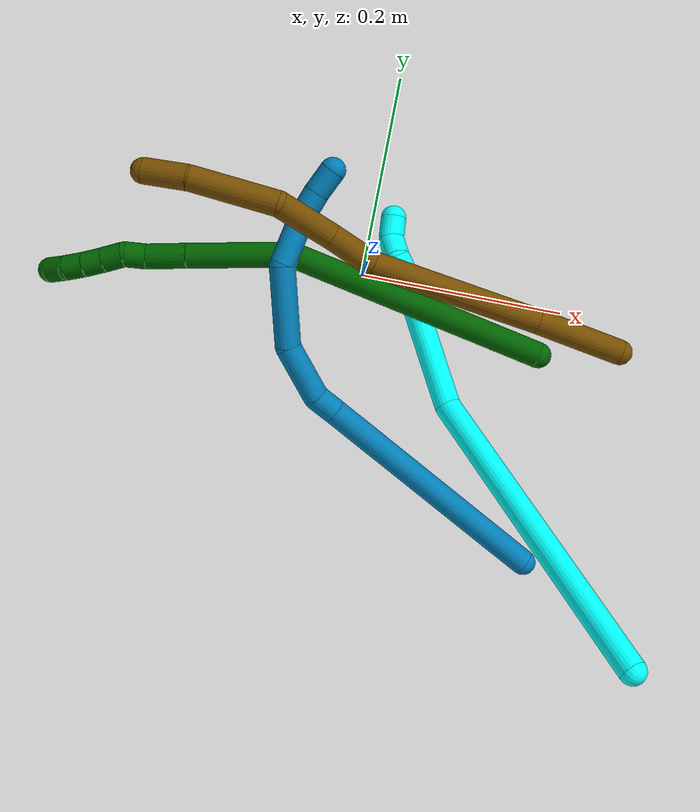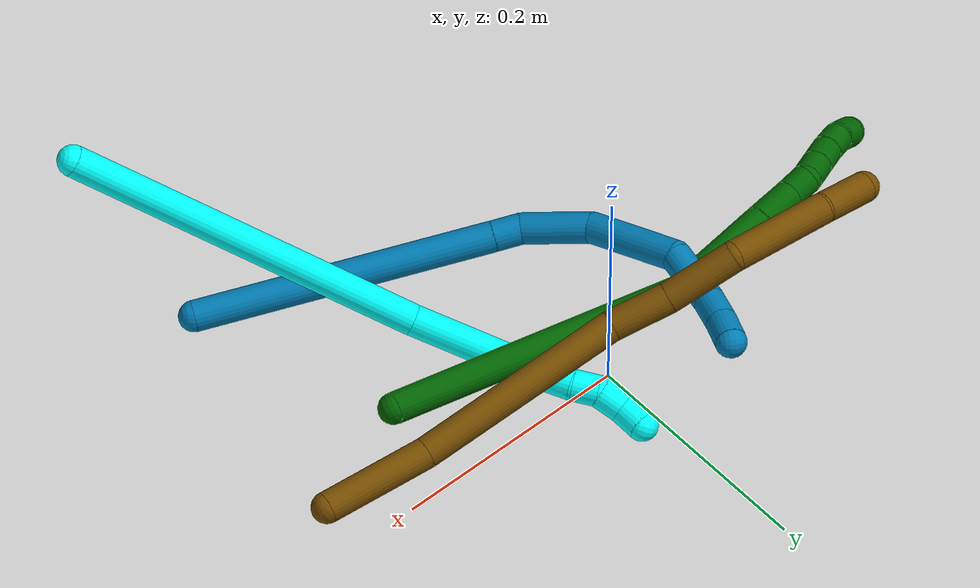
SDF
<sdf version="1.7">
 <world name="default">
  <model name="3">
   <static>0</static>
   <link name="3">
    <collision name="collision-cylinder-e_1_1_4">
     <pose>-0.002472 0.033689 -0.147242 -2.91666 -0.016366 0.144658</pose>
     <geometry><cylinder><radius>0.0125</radius><length>0.302135</length></cylinder></geometry>
     <surface>
      <friction><ode><mu>1.16</mu><mu2>1.16</mu2><slip1>0</slip1><slip2>0</slip2></ode></friction>
      <contact><ode><kp>1e+06</kp><kd>1</kd><max_vel>0</max_vel><min_depth>0.001</min_depth></ode></contact>
     </surface>
    </collision>
    <visual name="visual-cylinder-e_1_1_4">
     <pose>-0.002472 0.033689 -0.147242 -2.91666 -0.016366 0.144658</pose>
     <geometry><cylinder><radius>0.0125</radius><length>0.302135</length></cylinder></geometry>
     <material><ambient>0.003922 1 0.996078 1</ambient></material>
    </visual>
    <collision name="collision-cylinder-e_2_4_5">
     <pose>-0.0301 0.084288 -0.342342 -2.80196 -0.460121 1.87766</pose>
     <geometry><cylinder><radius>0.0125</radius><length>0.113297</length></cylinder></geometry>
     <surface>
      <friction><ode><mu>1.16</mu><mu2>1.16</mu2><slip1>0</slip1><slip2>0</slip2></ode></friction>
      <contact><ode><kp>1e+06</kp><kd>1</kd><max_vel>0</max_vel><min_depth>0.001</min_depth></ode></contact>
     </surface>
    </collision>
    <visual name="visual-cylinder-e_2_4_5">
     <pose>-0.0301 0.084288 -0.342342 -2.80196 -0.460121 1.87766</pose>
     <geometry><cylinder><radius>0.0125</radius><length>0.113297</length></cylinder></geometry>
     <material><ambient>0.003922 1 0.996078 1</ambient></material>
    </visual>
    <collision name="collision-cylinder-e_3_5_6">
     <pose>-0.061038 0.103978 -0.398027 -2.80028 -0.608153 2.13718</pose>
     <geometry><cylinder><radius>0.0125</radius><length>0.020243</length></cylinder></geometry>
     <surface>
      <friction><ode><mu>1.16</mu><mu2>1.16</mu2><slip1>0</slip1><slip2>0</slip2></ode></friction>
      <contact><ode><kp>1e+06</kp><kd>1</kd><max_vel>0</max_vel><min_depth>0.001</min_depth></ode></contact>
     </surface>
    </collision>
    <visual name="visual-cylinder-e_3_5_6">
     <pose>-0.061038 0.103978 -0.398027 -2.80028 -0.608153 2.13718</pose>
     <geometry><cylinder><radius>0.0125</radius><length>0.020243</length></cylinder></geometry>
     <material><ambient>0.003922 1 0.996078 1</ambient></material>
    </visual>
    <collision name="collision-cylinder-e_4_6_7">
     <pose>-0.071733 0.108203 -0.414715 -2.97997 -0.500651 2.52809</pose>
     <geometry><cylinder><radius>0.0125</radius><length>0.020466</length></cylinder></geometry>
     <surface>
      <friction><ode><mu>1.16</mu><mu2>1.16</mu2><slip1>0</slip1><slip2>0</slip2></ode></friction>
      <contact><ode><kp>1e+06</kp><kd>1</kd><max_vel>0</max_vel><min_depth>0.001</min_depth></ode></contact>
     </surface>
    </collision>
    <visual name="visual-cylinder-e_4_6_7">
     <pose>-0.071733 0.108203 -0.414715 -2.97997 -0.500651 2.52809</pose>
     <geometry><cylinder><radius>0.0125</radius><length>0.020466</length></cylinder></geometry>
     <material><ambient>0.003922 1 0.996078 1</ambient></material>
    </visual>
    <collision name="collision-cylinder-e_5_7_8">
     <pose>-0.078556 0.114528 -0.433543 -2.6863 -0.170548 0.706982</pose>
     <geometry><cylinder><radius>0.0125</radius><length>0.022523</length></cylinder></geometry>
     <surface>
      <friction><ode><mu>1.16</mu><mu2>1.16</mu2><slip1>0</slip1><slip2>0</slip2></ode></friction>
      <contact><ode><kp>1e+06</kp><kd>1</kd><max_vel>0</max_vel><min_depth>0.001</min_depth></ode></contact>
     </surface>
    </collision>
    <visual name="visual-cylinder-e_5_7_8">
     <pose>-0.078556 0.114528 -0.433543 -2.6863 -0.170548 0.706982</pose>
     <geometry><cylinder><radius>0.0125</radius><length>0.022523</length></cylinder></geometry>
     <material><ambient>0.003922 1 0.996078 1</ambient></material>
    </visual>
    <collision name="collision-cylinder-e_6_8_2">
     <pose>-0.085907 0.126007 -0.449888 -2.3391 -0.535087 1.14725</pose>
     <geometry><cylinder><radius>0.0125</radius><length>0.021335</length></cylinder></geometry>
     <surface>
      <friction><ode><mu>1.16</mu><mu2>1.16</mu2><slip1>0</slip1><slip2>0</slip2></ode></friction>
      <contact><ode><kp>1e+06</kp><kd>1</kd><max_vel>0</max_vel><min_depth>0.001</min_depth></ode></contact>
     </surface>
    </collision>
    <visual name="visual-cylinder-e_6_8_2">
     <pose>-0.085907 0.126007 -0.449888 -2.3391 -0.535087 1.14725</pose>
     <geometry><cylinder><radius>0.0125</radius><length>0.021335</length></cylinder></geometry>
     <material><ambient>0.003922 1 0.996078 1</ambient></material>
    </visual>
    <collision name="collision-sphere-2">
     <pose>-0.091346 0.132606 -0.456265 0 -0 0</pose>
     <geometry><sphere><radius>0.0125</radius></sphere></geometry>
     <surface>
      <friction><ode><mu>1.16</mu><mu2>1.16</mu2><slip1>0</slip1><slip2>0</slip2></ode></friction>
      <contact><ode><kp>1e+06</kp><kd>1</kd><max_vel>0</max_vel><min_depth>0.001</min_depth></ode></contact>
     </surface>
    </collision>
    <visual name="visual-sphere-2">
     <pose>-0.091346 0.132606 -0.456265 0 -0 0</pose>
     <geometry><sphere><radius>0.0125</radius></sphere></geometry>
     <material><ambient>0.003922 1 0.996078 1</ambient></material>
    </visual>
    <collision name="collision-sphere-4">
     <pose>-0.004945 0.067378 -0.294485 0 -0 0</pose>
     <geometry><sphere><radius>0.0125</radius></sphere></geometry>
     <surface>
      <friction><ode><mu>1.16</mu><mu2>1.16</mu2><slip1>0</slip1><slip2>0</slip2></ode></friction>
      <contact><ode><kp>1e+06</kp><kd>1</kd><max_vel>0</max_vel><min_depth>0.001</min_depth></ode></contact>
     </surface>
    </collision>
    <visual name="visual-sphere-4">
     <pose>-0.004945 0.067378 -0.294485 0 -0 0</pose>
     <geometry><sphere><radius>0.0125</radius></sphere></geometry>
     <material><ambient>0.003922 1 0.996078 1</ambient></material>
    </visual>
    <collision name="collision-sphere-1">
     <geometry><sphere><radius>0.0125</radius></sphere></geometry>
     <surface>
      <friction><ode><mu>1.16</mu><mu2>1.16</mu2><slip1>0</slip1><slip2>0</slip2></ode></friction>
      <contact><ode><kp>1e+06</kp><kd>1</kd><max_vel>0</max_vel><min_depth>0.001</min_depth></ode></contact>
     </surface>
    </collision>
    <visual name="visual-sphere-1">
     <geometry><sphere><radius>0.0125</radius></sphere></geometry>
     <material><ambient>0.003922 1 0.996078 1</ambient></material>
    </visual>
    <collision name="collision-sphere-8">
     <pose>-0.080467 0.119408 -0.443511 0 -0 0</pose>
     <geometry><sphere><radius>0.0125</radius></sphere></geometry>
     <surface>
      <friction><ode><mu>1.16</mu><mu2>1.16</mu2><slip1>0</slip1><slip2>0</slip2></ode></friction>
      <contact><ode><kp>1e+06</kp><kd>1</kd><max_vel>0</max_vel><min_depth>0.001</min_depth></ode></contact>
     </surface>
    </collision>
    <visual name="visual-sphere-8">
     <pose>-0.080467 0.119408 -0.443511 0 -0 0</pose>
     <geometry><sphere><radius>0.0125</radius></sphere></geometry>
     <material><ambient>0.003922 1 0.996078 1</ambient></material>
    </visual>
    <collision name="collision-sphere-5">
     <pose>-0.055255 0.101197 -0.3902 0 -0 0</pose>
     <geometry><sphere><radius>0.0125</radius></sphere></geometry>
     <surface>
      <friction><ode><mu>1.16</mu><mu2>1.16</mu2><slip1>0</slip1><slip2>0</slip2></ode></friction>
      <contact><ode><kp>1e+06</kp><kd>1</kd><max_vel>0</max_vel><min_depth>0.001</min_depth></ode></contact>
     </surface>
    </collision>
    <visual name="visual-sphere-5">
     <pose>-0.055255 0.101197 -0.3902 0 -0 0</pose>
     <geometry><sphere><radius>0.0125</radius></sphere></geometry>
     <material><ambient>0.003922 1 0.996078 1</ambient></material>
    </visual>
    <collision name="collision-sphere-6">
     <pose>-0.066821 0.106758 -0.405855 0 -0 0</pose>
     <geometry><sphere><radius>0.0125</radius></sphere></geometry>
     <surface>
      <friction><ode><mu>1.16</mu><mu2>1.16</mu2><slip1>0</slip1><slip2>0</slip2></ode></friction>
      <contact><ode><kp>1e+06</kp><kd>1</kd><max_vel>0</max_vel><min_depth>0.001</min_depth></ode></contact>
     </surface>
    </collision>
    <visual name="visual-sphere-6">
     <pose>-0.066821 0.106758 -0.405855 0 -0 0</pose>
     <geometry><sphere><radius>0.0125</radius></sphere></geometry>
     <material><ambient>0.003922 1 0.996078 1</ambient></material>
    </visual>
    <collision name="collision-sphere-7">
     <pose>-0.076644 0.109647 -0.423575 0 -0 0</pose>
     <geometry><sphere><radius>0.0125</radius></sphere></geometry>
     <surface>
      <friction><ode><mu>1.16</mu><mu2>1.16</mu2><slip1>0</slip1><slip2>0</slip2></ode></friction>
      <contact><ode><kp>1e+06</kp><kd>1</kd><max_vel>0</max_vel><min_depth>0.001</min_depth></ode></contact>
     </surface>
    </collision>
    <visual name="visual-sphere-7">
     <pose>-0.076644 0.109647 -0.423575 0 -0 0</pose>
     <geometry><sphere><radius>0.0125</radius></sphere></geometry>
     <material><ambient>0.003922 1 0.996078 1</ambient></material>
    </visual>
    <inertial>
     <pose>-0.020926 0.058631 -0.238363 0 -0 0</pose>
     <mass>0.5</mass>
     <inertia>
      <ixx>0.002689</ixx>
      <ixy>0</ixy>
      <ixz>0</ixz>
      <iyy>-0.001718</iyy>
      <iyz>0</iyz>
      <izz>-0.000494</izz>
     </inertia>
    </inertial>
   </link>
   <pose>0.28109 -0.294336 0.21033 -0.784713 0.86983 -1.48014</pose>
  </model>
  <model name="6">
   <static>0</static>
   <link name="6">
    <collision name="collision-cylinder-e_1_1_4">
     <pose>-0.063825 -0.021526 0.1074 0.197812 -0.527591 -0.053589</pose>
     <geometry><cylinder><radius>0.0125</radius><length>0.253548</length></cylinder></geometry>
     <surface>
      <friction><ode><mu>1.16</mu><mu2>1.16</mu2><slip1>0</slip1><slip2>0</slip2></ode></friction>
      <contact><ode><kp>1e+06</kp><kd>1</kd><max_vel>0</max_vel><min_depth>0.001</min_depth></ode></contact>
     </surface>
    </collision>
    <visual name="visual-cylinder-e_1_1_4">
     <pose>-0.063825 -0.021526 0.1074 0.197812 -0.527591 -0.053589</pose>
     <geometry><cylinder><radius>0.0125</radius><length>0.253548</length></cylinder></geometry>
     <material><ambient>0 0.392157 0.003922 1</ambient></material>
    </visual>
    <collision name="collision-cylinder-e_2_4_5">
     <pose>-0.155758 -0.06929 0.248363 0.663483 -0.583242 -0.206074</pose>
     <geometry><cylinder><radius>0.0125</radius><length>0.102078</length></cylinder></geometry>
     <surface>
      <friction><ode><mu>1.16</mu><mu2>1.16</mu2><slip1>0</slip1><slip2>0</slip2></ode></friction>
      <contact><ode><kp>1e+06</kp><kd>1</kd><max_vel>0</max_vel><min_depth>0.001</min_depth></ode></contact>
     </surface>
    </collision>
    <visual name="visual-cylinder-e_2_4_5">
     <pose>-0.155758 -0.06929 0.248363 0.663483 -0.583242 -0.206074</pose>
     <geometry><cylinder><radius>0.0125</radius><length>0.102078</length></cylinder></geometry>
     <material><ambient>0 0.392157 0.003922 1</ambient></material>
    </visual>
    <collision name="collision-cylinder-e_3_5_6">
     <pose>-0.195695 -0.106097 0.295074 0.677164 -0.611453 -0.221379</pose>
     <geometry><cylinder><radius>0.0125</radius><length>0.041207</length></cylinder></geometry>
     <surface>
      <friction><ode><mu>1.16</mu><mu2>1.16</mu2><slip1>0</slip1><slip2>0</slip2></ode></friction>
      <contact><ode><kp>1e+06</kp><kd>1</kd><max_vel>0</max_vel><min_depth>0.001</min_depth></ode></contact>
     </surface>
    </collision>
    <visual name="visual-cylinder-e_3_5_6">
     <pose>-0.195695 -0.106097 0.295074 0.677164 -0.611453 -0.221379</pose>
     <geometry><cylinder><radius>0.0125</radius><length>0.041207</length></cylinder></geometry>
     <material><ambient>0 0.392157 0.003922 1</ambient></material>
    </visual>
    <collision name="collision-cylinder-e_4_6_7">
     <pose>-0.211446 -0.121605 0.316814 0.521537 -0.377018 -0.101726</pose>
     <geometry><cylinder><radius>0.0125</radius><length>0.021314</length></cylinder></geometry>
     <surface>
      <friction><ode><mu>1.16</mu><mu2>1.16</mu2><slip1>0</slip1><slip2>0</slip2></ode></friction>
      <contact><ode><kp>1e+06</kp><kd>1</kd><max_vel>0</max_vel><min_depth>0.001</min_depth></ode></contact>
     </surface>
    </collision>
    <visual name="visual-cylinder-e_4_6_7">
     <pose>-0.211446 -0.121605 0.316814 0.521537 -0.377018 -0.101726</pose>
     <geometry><cylinder><radius>0.0125</radius><length>0.021314</length></cylinder></geometry>
     <material><ambient>0 0.392157 0.003922 1</ambient></material>
    </visual>
    <collision name="collision-cylinder-e_5_7_8">
     <pose>-0.221599 -0.133616 0.330237 0.971547 -0.62871 -0.340011</pose>
     <geometry><cylinder><radius>0.0125</radius><length>0.021185</length></cylinder></geometry>
     <surface>
      <friction><ode><mu>1.16</mu><mu2>1.16</mu2><slip1>0</slip1><slip2>0</slip2></ode></friction>
      <contact><ode><kp>1e+06</kp><kd>1</kd><max_vel>0</max_vel><min_depth>0.001</min_depth></ode></contact>
     </surface>
    </collision>
    <visual name="visual-cylinder-e_5_7_8">
     <pose>-0.221599 -0.133616 0.330237 0.971547 -0.62871 -0.340011</pose>
     <geometry><cylinder><radius>0.0125</radius><length>0.021185</length></cylinder></geometry>
     <material><ambient>0 0.392157 0.003922 1</ambient></material>
    </visual>
    <collision name="collision-cylinder-e_6_8_9">
     <pose>-0.233588 -0.147519 0.340153 0.930857 -0.594745 -0.305428</pose>
     <geometry><cylinder><radius>0.0125</radius><length>0.020558</length></cylinder></geometry>
     <surface>
      <friction><ode><mu>1.16</mu><mu2>1.16</mu2><slip1>0</slip1><slip2>0</slip2></ode></friction>
      <contact><ode><kp>1e+06</kp><kd>1</kd><max_vel>0</max_vel><min_depth>0.001</min_depth></ode></contact>
     </surface>
    </collision>
    <visual name="visual-cylinder-e_6_8_9">
     <pose>-0.233588 -0.147519 0.340153 0.930857 -0.594745 -0.305428</pose>
     <geometry><cylinder><radius>0.0125</radius><length>0.020558</length></cylinder></geometry>
     <material><ambient>0 0.392157 0.003922 1</ambient></material>
    </visual>
    <collision name="collision-cylinder-e_7_9_10">
     <pose>-0.245439 -0.16047 0.350322 0.877662 -0.65335 -0.315406</pose>
     <geometry><cylinder><radius>0.0125</radius><length>0.020042</length></cylinder></geometry>
     <surface>
      <friction><ode><mu>1.16</mu><mu2>1.16</mu2><slip1>0</slip1><slip2>0</slip2></ode></friction>
      <contact><ode><kp>1e+06</kp><kd>1</kd><max_vel>0</max_vel><min_depth>0.001</min_depth></ode></contact>
     </surface>
    </collision>
    <visual name="visual-cylinder-e_7_9_10">
     <pose>-0.245439 -0.16047 0.350322 0.877662 -0.65335 -0.315406</pose>
     <geometry><cylinder><radius>0.0125</radius><length>0.020042</length></cylinder></geometry>
     <material><ambient>0 0.392157 0.003922 1</ambient></material>
    </visual>
    <collision name="collision-cylinder-e_8_10_2">
     <pose>-0.259836 -0.170953 0.358963 0.886723 -0.975301 -0.493478</pose>
     <geometry><cylinder><radius>0.0125</radius><length>0.020067</length></cylinder></geometry>
     <surface>
      <friction><ode><mu>1.16</mu><mu2>1.16</mu2><slip1>0</slip1><slip2>0</slip2></ode></friction>
      <contact><ode><kp>1e+06</kp><kd>1</kd><max_vel>0</max_vel><min_depth>0.001</min_depth></ode></contact>
     </surface>
    </collision>
    <visual name="visual-cylinder-e_8_10_2">
     <pose>-0.259836 -0.170953 0.358963 0.886723 -0.975301 -0.493478</pose>
     <geometry><cylinder><radius>0.0125</radius><length>0.020067</length></cylinder></geometry>
     <material><ambient>0 0.392157 0.003922 1</ambient></material>
    </visual>
    <collision name="collision-sphere-2">
     <pose>-0.268143 -0.175314 0.362519 0 -0 0</pose>
     <geometry><sphere><radius>0.0125</radius></sphere></geometry>
     <surface>
      <friction><ode><mu>1.16</mu><mu2>1.16</mu2><slip1>0</slip1><slip2>0</slip2></ode></friction>
      <contact><ode><kp>1e+06</kp><kd>1</kd><max_vel>0</max_vel><min_depth>0.001</min_depth></ode></contact>
     </surface>
    </collision>
    <visual name="visual-sphere-2">
     <pose>-0.268143 -0.175314 0.362519 0 -0 0</pose>
     <geometry><sphere><radius>0.0125</radius></sphere></geometry>
     <material><ambient>0 0.392157 0.003922 1</ambient></material>
    </visual>
    <collision name="collision-sphere-10">
     <pose>-0.25153 -0.166591 0.355406 0 -0 0</pose>
     <geometry><sphere><radius>0.0125</radius></sphere></geometry>
     <surface>
      <friction><ode><mu>1.16</mu><mu2>1.16</mu2><slip1>0</slip1><slip2>0</slip2></ode></friction>
      <contact><ode><kp>1e+06</kp><kd>1</kd><max_vel>0</max_vel><min_depth>0.001</min_depth></ode></contact>
     </surface>
    </collision>
    <visual name="visual-sphere-10">
     <pose>-0.25153 -0.166591 0.355406 0 -0 0</pose>
     <geometry><sphere><radius>0.0125</radius></sphere></geometry>
     <material><ambient>0 0.392157 0.003922 1</ambient></material>
    </visual>
    <collision name="collision-sphere-9">
     <pose>-0.239347 -0.154349 0.345238 0 -0 0</pose>
     <geometry><sphere><radius>0.0125</radius></sphere></geometry>
     <surface>
      <friction><ode><mu>1.16</mu><mu2>1.16</mu2><slip1>0</slip1><slip2>0</slip2></ode></friction>
      <contact><ode><kp>1e+06</kp><kd>1</kd><max_vel>0</max_vel><min_depth>0.001</min_depth></ode></contact>
     </surface>
    </collision>
    <visual name="visual-sphere-9">
     <pose>-0.239347 -0.154349 0.345238 0 -0 0</pose>
     <geometry><sphere><radius>0.0125</radius></sphere></geometry>
     <material><ambient>0 0.392157 0.003922 1</ambient></material>
    </visual>
    <collision name="collision-sphere-4">
     <pose>-0.127649 -0.043053 0.214799 0 -0 0</pose>
     <geometry><sphere><radius>0.0125</radius></sphere></geometry>
     <surface>
      <friction><ode><mu>1.16</mu><mu2>1.16</mu2><slip1>0</slip1><slip2>0</slip2></ode></friction>
      <contact><ode><kp>1e+06</kp><kd>1</kd><max_vel>0</max_vel><min_depth>0.001</min_depth></ode></contact>
     </surface>
    </collision>
    <visual name="visual-sphere-4">
     <pose>-0.127649 -0.043053 0.214799 0 -0 0</pose>
     <geometry><sphere><radius>0.0125</radius></sphere></geometry>
     <material><ambient>0 0.392157 0.003922 1</ambient></material>
    </visual>
    <collision name="collision-sphere-1">
     <geometry><sphere><radius>0.0125</radius></sphere></geometry>
     <surface>
      <friction><ode><mu>1.16</mu><mu2>1.16</mu2><slip1>0</slip1><slip2>0</slip2></ode></friction>
      <contact><ode><kp>1e+06</kp><kd>1</kd><max_vel>0</max_vel><min_depth>0.001</min_depth></ode></contact>
     </surface>
    </collision>
    <visual name="visual-sphere-1">
     <geometry><sphere><radius>0.0125</radius></sphere></geometry>
     <material><ambient>0 0.392157 0.003922 1</ambient></material>
    </visual>
    <collision name="collision-sphere-8">
     <pose>-0.227829 -0.14069 0.335069 0 -0 0</pose>
     <geometry><sphere><radius>0.0125</radius></sphere></geometry>
     <surface>
      <friction><ode><mu>1.16</mu><mu2>1.16</mu2><slip1>0</slip1><slip2>0</slip2></ode></friction>
      <contact><ode><kp>1e+06</kp><kd>1</kd><max_vel>0</max_vel><min_depth>0.001</min_depth></ode></contact>
     </surface>
    </collision>
    <visual name="visual-sphere-8">
     <pose>-0.227829 -0.14069 0.335069 0 -0 0</pose>
     <geometry><sphere><radius>0.0125</radius></sphere></geometry>
     <material><ambient>0 0.392157 0.003922 1</ambient></material>
    </visual>
    <collision name="collision-sphere-5">
     <pose>-0.183867 -0.095526 0.281926 0 -0 0</pose>
     <geometry><sphere><radius>0.0125</radius></sphere></geometry>
     <surface>
      <friction><ode><mu>1.16</mu><mu2>1.16</mu2><slip1>0</slip1><slip2>0</slip2></ode></friction>
      <contact><ode><kp>1e+06</kp><kd>1</kd><max_vel>0</max_vel><min_depth>0.001</min_depth></ode></contact>
     </surface>
    </collision>
    <visual name="visual-sphere-5">
     <pose>-0.183867 -0.095526 0.281926 0 -0 0</pose>
     <geometry><sphere><radius>0.0125</radius></sphere></geometry>
     <material><ambient>0 0.392157 0.003922 1</ambient></material>
    </visual>
    <collision name="collision-sphere-6">
     <pose>-0.207523 -0.116668 0.308223 0 -0 0</pose>
     <geometry><sphere><radius>0.0125</radius></sphere></geometry>
     <surface>
      <friction><ode><mu>1.16</mu><mu2>1.16</mu2><slip1>0</slip1><slip2>0</slip2></ode></friction>
      <contact><ode><kp>1e+06</kp><kd>1</kd><max_vel>0</max_vel><min_depth>0.001</min_depth></ode></contact>
     </surface>
    </collision>
    <visual name="visual-sphere-6">
     <pose>-0.207523 -0.116668 0.308223 0 -0 0</pose>
     <geometry><sphere><radius>0.0125</radius></sphere></geometry>
     <material><ambient>0 0.392157 0.003922 1</ambient></material>
    </visual>
    <collision name="collision-sphere-7">
     <pose>-0.21537 -0.126541 0.325405 0 -0 0</pose>
     <geometry><sphere><radius>0.0125</radius></sphere></geometry>
     <surface>
      <friction><ode><mu>1.16</mu><mu2>1.16</mu2><slip1>0</slip1><slip2>0</slip2></ode></friction>
      <contact><ode><kp>1e+06</kp><kd>1</kd><max_vel>0</max_vel><min_depth>0.001</min_depth></ode></contact>
     </surface>
    </collision>
    <visual name="visual-sphere-7">
     <pose>-0.21537 -0.126541 0.325405 0 -0 0</pose>
     <geometry><sphere><radius>0.0125</radius></sphere></geometry>
     <material><ambient>0 0.392157 0.003922 1</ambient></material>
    </visual>
    <inertial>
     <pose>-0.128566 -0.06401 0.199417 0 -0 0</pose>
     <mass>0.5</mass>
     <inertia>
      <ixx>0.001165</ixx>
      <ixy>0</ixy>
      <ixz>0</ixz>
      <iyy>0.001341</iyy>
      <iyz>0</iyz>
      <izz>0.001065</izz>
     </inertia>
    </inertial>
   </link>
   <pose>0.17743 -0.046808 0.060529 -0.309227 -1.08105 -0.103306</pose>
  </model>
  <model name="9">
   <static>0</static>
   <link name="9">
    <collision name="collision-cylinder-e_1_1_4">
     <pose>-0.033566 0.003322 -0.115312 -3.11279 -0.283152 2.94018</pose>
     <geometry><cylinder><radius>0.0125</radius><length>0.240287</length></cylinder></geometry>
     <surface>
      <friction><ode><mu>1.16</mu><mu2>1.16</mu2><slip1>0</slip1><slip2>0</slip2></ode></friction>
      <contact><ode><kp>1e+06</kp><kd>1</kd><max_vel>0</max_vel><min_depth>0.001</min_depth></ode></contact>
     </surface>
    </collision>
    <visual name="visual-cylinder-e_1_1_4">
     <pose>-0.033566 0.003322 -0.115312 -3.11279 -0.283152 2.94018</pose>
     <geometry><cylinder><radius>0.0125</radius><length>0.240287</length></cylinder></geometry>
     <material><ambient>0 0.490196 0.709804 1</ambient></material>
    </visual>
    <collision name="collision-cylinder-e_2_4_5">
     <pose>-0.070344 0.00679 -0.241631 -3.12839 -0.283845 3.04926</pose>
     <geometry><cylinder><radius>0.0125</radius><length>0.022936</length></cylinder></geometry>
     <surface>
      <friction><ode><mu>1.16</mu><mu2>1.16</mu2><slip1>0</slip1><slip2>0</slip2></ode></friction>
      <contact><ode><kp>1e+06</kp><kd>1</kd><max_vel>0</max_vel><min_depth>0.001</min_depth></ode></contact>
     </surface>
    </collision>
    <visual name="visual-cylinder-e_2_4_5">
     <pose>-0.070344 0.00679 -0.241631 -3.12839 -0.283845 3.04926</pose>
     <geometry><cylinder><radius>0.0125</radius><length>0.022936</length></cylinder></geometry>
     <material><ambient>0 0.490196 0.709804 1</ambient></material>
    </visual>
    <collision name="collision-cylinder-e_3_5_6">
     <pose>-0.082264 0.018071 -0.276823 -2.71007 -0.316118 1.25754</pose>
     <geometry><cylinder><radius>0.0125</radius><length>0.056024</length></cylinder></geometry>
     <surface>
      <friction><ode><mu>1.16</mu><mu2>1.16</mu2><slip1>0</slip1><slip2>0</slip2></ode></friction>
      <contact><ode><kp>1e+06</kp><kd>1</kd><max_vel>0</max_vel><min_depth>0.001</min_depth></ode></contact>
     </surface>
    </collision>
    <visual name="visual-cylinder-e_3_5_6">
     <pose>-0.082264 0.018071 -0.276823 -2.71007 -0.316118 1.25754</pose>
     <geometry><cylinder><radius>0.0125</radius><length>0.056024</length></cylinder></geometry>
     <material><ambient>0 0.490196 0.709804 1</ambient></material>
    </visual>
    <collision name="collision-cylinder-e_4_6_7">
     <pose>-0.101715 0.058505 -0.325151 -2.26006 -0.275755 0.572168</pose>
     <geometry><cylinder><radius>0.0125</radius><length>0.078913</length></cylinder></geometry>
     <surface>
      <friction><ode><mu>1.16</mu><mu2>1.16</mu2><slip1>0</slip1><slip2>0</slip2></ode></friction>
      <contact><ode><kp>1e+06</kp><kd>1</kd><max_vel>0</max_vel><min_depth>0.001</min_depth></ode></contact>
     </surface>
    </collision>
    <visual name="visual-cylinder-e_4_6_7">
     <pose>-0.101715 0.058505 -0.325151 -2.26006 -0.275755 0.572168</pose>
     <geometry><cylinder><radius>0.0125</radius><length>0.078913</length></cylinder></geometry>
     <material><ambient>0 0.490196 0.709804 1</ambient></material>
    </visual>
    <collision name="collision-cylinder-e_5_7_8">
     <pose>-0.111162 0.111604 -0.356236 -1.85451 0.052229 -0.069621</pose>
     <geometry><cylinder><radius>0.0125</radius><length>0.04965</length></cylinder></geometry>
     <surface>
      <friction><ode><mu>1.16</mu><mu2>1.16</mu2><slip1>0</slip1><slip2>0</slip2></ode></friction>
      <contact><ode><kp>1e+06</kp><kd>1</kd><max_vel>0</max_vel><min_depth>0.001</min_depth></ode></contact>
     </surface>
    </collision>
    <visual name="visual-cylinder-e_5_7_8">
     <pose>-0.111162 0.111604 -0.356236 -1.85451 0.052229 -0.069621</pose>
     <geometry><cylinder><radius>0.0125</radius><length>0.04965</length></cylinder></geometry>
     <material><ambient>0 0.490196 0.709804 1</ambient></material>
    </visual>
    <collision name="collision-cylinder-e_6_8_9">
     <pose>-0.111226 0.148462 -0.364364 -1.66155 -0.1034 0.113217</pose>
     <geometry><cylinder><radius>0.0125</radius><length>0.026363</length></cylinder></geometry>
     <surface>
      <friction><ode><mu>1.16</mu><mu2>1.16</mu2><slip1>0</slip1><slip2>0</slip2></ode></friction>
      <contact><ode><kp>1e+06</kp><kd>1</kd><max_vel>0</max_vel><min_depth>0.001</min_depth></ode></contact>
     </surface>
    </collision>
    <visual name="visual-cylinder-e_6_8_9">
     <pose>-0.111226 0.148462 -0.364364 -1.66155 -0.1034 0.113217</pose>
     <geometry><cylinder><radius>0.0125</radius><length>0.026363</length></cylinder></geometry>
     <material><ambient>0 0.490196 0.709804 1</ambient></material>
    </visual>
    <collision name="collision-cylinder-e_7_9_2">
     <pose>-0.114534 0.174284 -0.365425 -1.5609 -0.15132 0.149836</pose>
     <geometry><cylinder><radius>0.0125</radius><length>0.025827</length></cylinder></geometry>
     <surface>
      <friction><ode><mu>1.16</mu><mu2>1.16</mu2><slip1>0</slip1><slip2>0</slip2></ode></friction>
      <contact><ode><kp>1e+06</kp><kd>1</kd><max_vel>0</max_vel><min_depth>0.001</min_depth></ode></contact>
     </surface>
    </collision>
    <visual name="visual-cylinder-e_7_9_2">
     <pose>-0.114534 0.174284 -0.365425 -1.5609 -0.15132 0.149836</pose>
     <geometry><cylinder><radius>0.0125</radius><length>0.025827</length></cylinder></geometry>
     <material><ambient>0 0.490196 0.709804 1</ambient></material>
    </visual>
    <collision name="collision-sphere-2">
     <pose>-0.11648 0.187049 -0.365299 0 -0 0</pose>
     <geometry><sphere><radius>0.0125</radius></sphere></geometry>
     <surface>
      <friction><ode><mu>1.16</mu><mu2>1.16</mu2><slip1>0</slip1><slip2>0</slip2></ode></friction>
      <contact><ode><kp>1e+06</kp><kd>1</kd><max_vel>0</max_vel><min_depth>0.001</min_depth></ode></contact>
     </surface>
    </collision>
    <visual name="visual-sphere-2">
     <pose>-0.11648 0.187049 -0.365299 0 -0 0</pose>
     <geometry><sphere><radius>0.0125</radius></sphere></geometry>
     <material><ambient>0 0.490196 0.709804 1</ambient></material>
    </visual>
    <collision name="collision-sphere-9">
     <pose>-0.112587 0.161519 -0.365552 0 -0 0</pose>
     <geometry><sphere><radius>0.0125</radius></sphere></geometry>
     <surface>
      <friction><ode><mu>1.16</mu><mu2>1.16</mu2><slip1>0</slip1><slip2>0</slip2></ode></friction>
      <contact><ode><kp>1e+06</kp><kd>1</kd><max_vel>0</max_vel><min_depth>0.001</min_depth></ode></contact>
     </surface>
    </collision>
    <visual name="visual-sphere-9">
     <pose>-0.112587 0.161519 -0.365552 0 -0 0</pose>
     <geometry><sphere><radius>0.0125</radius></sphere></geometry>
     <material><ambient>0 0.490196 0.709804 1</ambient></material>
    </visual>
    <collision name="collision-sphere-4">
     <pose>-0.067132 0.006645 -0.230623 0 -0 0</pose>
     <geometry><sphere><radius>0.0125</radius></sphere></geometry>
     <surface>
      <friction><ode><mu>1.16</mu><mu2>1.16</mu2><slip1>0</slip1><slip2>0</slip2></ode></friction>
      <contact><ode><kp>1e+06</kp><kd>1</kd><max_vel>0</max_vel><min_depth>0.001</min_depth></ode></contact>
     </surface>
    </collision>
    <visual name="visual-sphere-4">
     <pose>-0.067132 0.006645 -0.230623 0 -0 0</pose>
     <geometry><sphere><radius>0.0125</radius></sphere></geometry>
     <material><ambient>0 0.490196 0.709804 1</ambient></material>
    </visual>
    <collision name="collision-sphere-1">
     <geometry><sphere><radius>0.0125</radius></sphere></geometry>
     <surface>
      <friction><ode><mu>1.16</mu><mu2>1.16</mu2><slip1>0</slip1><slip2>0</slip2></ode></friction>
      <contact><ode><kp>1e+06</kp><kd>1</kd><max_vel>0</max_vel><min_depth>0.001</min_depth></ode></contact>
     </surface>
    </collision>
    <visual name="visual-sphere-1">
     <geometry><sphere><radius>0.0125</radius></sphere></geometry>
     <material><ambient>0 0.490196 0.709804 1</ambient></material>
    </visual>
    <collision name="collision-sphere-8">
     <pose>-0.109866 0.135405 -0.363175 0 -0 0</pose>
     <geometry><sphere><radius>0.0125</radius></sphere></geometry>
     <surface>
      <friction><ode><mu>1.16</mu><mu2>1.16</mu2><slip1>0</slip1><slip2>0</slip2></ode></friction>
      <contact><ode><kp>1e+06</kp><kd>1</kd><max_vel>0</max_vel><min_depth>0.001</min_depth></ode></contact>
     </surface>
    </collision>
    <visual name="visual-sphere-8">
     <pose>-0.109866 0.135405 -0.363175 0 -0 0</pose>
     <geometry><sphere><radius>0.0125</radius></sphere></geometry>
     <material><ambient>0 0.490196 0.709804 1</ambient></material>
    </visual>
    <collision name="collision-sphere-5">
     <pose>-0.073555 0.006935 -0.252639 0 -0 0</pose>
     <geometry><sphere><radius>0.0125</radius></sphere></geometry>
     <surface>
      <friction><ode><mu>1.16</mu><mu2>1.16</mu2><slip1>0</slip1><slip2>0</slip2></ode></friction>
      <contact><ode><kp>1e+06</kp><kd>1</kd><max_vel>0</max_vel><min_depth>0.001</min_depth></ode></contact>
     </surface>
    </collision>
    <visual name="visual-sphere-5">
     <pose>-0.073555 0.006935 -0.252639 0 -0 0</pose>
     <geometry><sphere><radius>0.0125</radius></sphere></geometry>
     <material><ambient>0 0.490196 0.709804 1</ambient></material>
    </visual>
    <collision name="collision-sphere-6">
     <pose>-0.090972 0.029206 -0.301006 0 -0 0</pose>
     <geometry><sphere><radius>0.0125</radius></sphere></geometry>
     <surface>
      <friction><ode><mu>1.16</mu><mu2>1.16</mu2><slip1>0</slip1><slip2>0</slip2></ode></friction>
      <contact><ode><kp>1e+06</kp><kd>1</kd><max_vel>0</max_vel><min_depth>0.001</min_depth></ode></contact>
     </surface>
    </collision>
    <visual name="visual-sphere-6">
     <pose>-0.090972 0.029206 -0.301006 0 -0 0</pose>
     <geometry><sphere><radius>0.0125</radius></sphere></geometry>
     <material><ambient>0 0.490196 0.709804 1</ambient></material>
    </visual>
    <collision name="collision-sphere-7">
     <pose>-0.112458 0.087804 -0.349296 0 -0 0</pose>
     <geometry><sphere><radius>0.0125</radius></sphere></geometry>
     <surface>
      <friction><ode><mu>1.16</mu><mu2>1.16</mu2><slip1>0</slip1><slip2>0</slip2></ode></friction>
      <contact><ode><kp>1e+06</kp><kd>1</kd><max_vel>0</max_vel><min_depth>0.001</min_depth></ode></contact>
     </surface>
    </collision>
    <visual name="visual-sphere-7">
     <pose>-0.112458 0.087804 -0.349296 0 -0 0</pose>
     <geometry><sphere><radius>0.0125</radius></sphere></geometry>
     <material><ambient>0 0.490196 0.709804 1</ambient></material>
    </visual>
    <inertial>
     <pose>-0.067448 0.041079 -0.222296 0 -0 0</pose>
     <mass>0.5</mass>
     <inertia>
      <ixx>-0.000788</ixx>
      <ixy>0</ixy>
      <ixz>0</ixz>
      <iyy>0.001397</iyy>
      <iyz>0</iyz>
      <izz>0.000227</izz>
     </inertia>
    </inertial>
   </link>
   <pose>0.208337 -0.248602 0.011776 0.354558 1.4097 -0.118179</pose>
  </model>
  <model name="12">
   <static>0</static>
   <link name="12">
    <collision name="collision-cylinder-e_1_1_4">
     <pose>-0.040241 0.007439 0.015844 -0.438984 -1.16052 0.290426</pose>
     <geometry><cylinder><radius>0.0125</radius><length>0.087766</length></cylinder></geometry>
     <surface>
      <friction><ode><mu>1.16</mu><mu2>1.16</mu2><slip1>0</slip1><slip2>0</slip2></ode></friction>
      <contact><ode><kp>1e+06</kp><kd>1</kd><max_vel>0</max_vel><min_depth>0.001</min_depth></ode></contact>
     </surface>
    </collision>
    <visual name="visual-cylinder-e_1_1_4">
     <pose>-0.040241 0.007439 0.015844 -0.438984 -1.16052 0.290426</pose>
     <geometry><cylinder><radius>0.0125</radius><length>0.087766</length></cylinder></geometry>
     <material><ambient>0.466667 0.301961 0 1</ambient></material>
    </visual>
    <collision name="collision-cylinder-e_2_4_5">
     <pose>-0.163661 0.028057 0.053214 -0.549343 -1.27618 0.412015</pose>
     <geometry><cylinder><radius>0.0125</radius><length>0.173849</length></cylinder></geometry>
     <surface>
      <friction><ode><mu>1.16</mu><mu2>1.16</mu2><slip1>0</slip1><slip2>0</slip2></ode></friction>
      <contact><ode><kp>1e+06</kp><kd>1</kd><max_vel>0</max_vel><min_depth>0.001</min_depth></ode></contact>
     </surface>
    </collision>
    <visual name="visual-cylinder-e_2_4_5">
     <pose>-0.163661 0.028057 0.053214 -0.549343 -1.27618 0.412015</pose>
     <geometry><cylinder><radius>0.0125</radius><length>0.173849</length></cylinder></geometry>
     <material><ambient>0.466667 0.301961 0 1</ambient></material>
    </visual>
    <collision name="collision-cylinder-e_3_5_6">
     <pose>-0.270396 0.038697 0.081058 0.38217 -1.28943 -0.288876</pose>
     <geometry><cylinder><radius>0.0125</radius><length>0.04904</length></cylinder></geometry>
     <surface>
      <friction><ode><mu>1.16</mu><mu2>1.16</mu2><slip1>0</slip1><slip2>0</slip2></ode></friction>
      <contact><ode><kp>1e+06</kp><kd>1</kd><max_vel>0</max_vel><min_depth>0.001</min_depth></ode></contact>
     </surface>
    </collision>
    <visual name="visual-cylinder-e_3_5_6">
     <pose>-0.270396 0.038697 0.081058 0.38217 -1.28943 -0.288876</pose>
     <geometry><cylinder><radius>0.0125</radius><length>0.04904</length></cylinder></geometry>
     <material><ambient>0.466667 0.301961 0 1</ambient></material>
    </visual>
    <collision name="collision-cylinder-e_4_6_7">
     <pose>-0.323216 0.032922 0.091251 0.695625 -1.39997 -0.592739</pose>
     <geometry><cylinder><radius>0.0125</radius><length>0.059393</length></cylinder></geometry>
     <surface>
      <friction><ode><mu>1.16</mu><mu2>1.16</mu2><slip1>0</slip1><slip2>0</slip2></ode></friction>
      <contact><ode><kp>1e+06</kp><kd>1</kd><max_vel>0</max_vel><min_depth>0.001</min_depth></ode></contact>
     </surface>
    </collision>
    <visual name="visual-cylinder-e_4_6_7">
     <pose>-0.323216 0.032922 0.091251 0.695625 -1.39997 -0.592739</pose>
     <geometry><cylinder><radius>0.0125</radius><length>0.059393</length></cylinder></geometry>
     <material><ambient>0.466667 0.301961 0 1</ambient></material>
    </visual>
    <collision name="collision-cylinder-e_5_7_8">
     <pose>-0.389351 0.041685 0.113372 -0.581669 -1.03608 0.337951</pose>
     <geometry><cylinder><radius>0.0125</radius><length>0.085704</length></cylinder></geometry>
     <surface>
      <friction><ode><mu>1.16</mu><mu2>1.16</mu2><slip1>0</slip1><slip2>0</slip2></ode></friction>
      <contact><ode><kp>1e+06</kp><kd>1</kd><max_vel>0</max_vel><min_depth>0.001</min_depth></ode></contact>
     </surface>
    </collision>
    <visual name="visual-cylinder-e_5_7_8">
     <pose>-0.389351 0.041685 0.113372 -0.581669 -1.03608 0.337951</pose>
     <geometry><cylinder><radius>0.0125</radius><length>0.085704</length></cylinder></geometry>
     <material><ambient>0.466667 0.301961 0 1</ambient></material>
    </visual>
    <collision name="collision-cylinder-e_6_8_2">
     <pose>-0.442749 0.063223 0.142813 -0.705775 -0.843577 0.32757</pose>
     <geometry><cylinder><radius>0.0125</radius><length>0.044249</length></cylinder></geometry>
     <surface>
      <friction><ode><mu>1.16</mu><mu2>1.16</mu2><slip1>0</slip1><slip2>0</slip2></ode></friction>
      <contact><ode><kp>1e+06</kp><kd>1</kd><max_vel>0</max_vel><min_depth>0.001</min_depth></ode></contact>
     </surface>
    </collision>
    <visual name="visual-cylinder-e_6_8_2">
     <pose>-0.442749 0.063223 0.142813 -0.705775 -0.843577 0.32757</pose>
     <geometry><cylinder><radius>0.0125</radius><length>0.044249</length></cylinder></geometry>
     <material><ambient>0.466667 0.301961 0 1</ambient></material>
    </visual>
    <collision name="collision-sphere-2">
     <pose>-0.459276 0.072763 0.154007 0 -0 0</pose>
     <geometry><sphere><radius>0.0125</radius></sphere></geometry>
     <surface>
      <friction><ode><mu>1.16</mu><mu2>1.16</mu2><slip1>0</slip1><slip2>0</slip2></ode></friction>
      <contact><ode><kp>1e+06</kp><kd>1</kd><max_vel>0</max_vel><min_depth>0.001</min_depth></ode></contact>
     </surface>
    </collision>
    <visual name="visual-sphere-2">
     <pose>-0.459276 0.072763 0.154007 0 -0 0</pose>
     <geometry><sphere><radius>0.0125</radius></sphere></geometry>
     <material><ambient>0.466667 0.301961 0 1</ambient></material>
    </visual>
    <collision name="collision-sphere-4">
     <pose>-0.080482 0.014878 0.031687 0 -0 0</pose>
     <geometry><sphere><radius>0.0125</radius></sphere></geometry>
     <surface>
      <friction><ode><mu>1.16</mu><mu2>1.16</mu2><slip1>0</slip1><slip2>0</slip2></ode></friction>
      <contact><ode><kp>1e+06</kp><kd>1</kd><max_vel>0</max_vel><min_depth>0.001</min_depth></ode></contact>
     </surface>
    </collision>
    <visual name="visual-sphere-4">
     <pose>-0.080482 0.014878 0.031687 0 -0 0</pose>
     <geometry><sphere><radius>0.0125</radius></sphere></geometry>
     <material><ambient>0.466667 0.301961 0 1</ambient></material>
    </visual>
    <collision name="collision-sphere-1">
     <geometry><sphere><radius>0.0125</radius></sphere></geometry>
     <surface>
      <friction><ode><mu>1.16</mu><mu2>1.16</mu2><slip1>0</slip1><slip2>0</slip2></ode></friction>
      <contact><ode><kp>1e+06</kp><kd>1</kd><max_vel>0</max_vel><min_depth>0.001</min_depth></ode></contact>
     </surface>
    </collision>
    <visual name="visual-sphere-1">
     <geometry><sphere><radius>0.0125</radius></sphere></geometry>
     <material><ambient>0.466667 0.301961 0 1</ambient></material>
    </visual>
    <collision name="collision-sphere-8">
     <pose>-0.426221 0.053683 0.131618 0 -0 0</pose>
     <geometry><sphere><radius>0.0125</radius></sphere></geometry>
     <surface>
      <friction><ode><mu>1.16</mu><mu2>1.16</mu2><slip1>0</slip1><slip2>0</slip2></ode></friction>
      <contact><ode><kp>1e+06</kp><kd>1</kd><max_vel>0</max_vel><min_depth>0.001</min_depth></ode></contact>
     </surface>
    </collision>
    <visual name="visual-sphere-8">
     <pose>-0.426221 0.053683 0.131618 0 -0 0</pose>
     <geometry><sphere><radius>0.0125</radius></sphere></geometry>
     <material><ambient>0.466667 0.301961 0 1</ambient></material>
    </visual>
    <collision name="collision-sphere-5">
     <pose>-0.24684 0.041236 0.074741 0 -0 0</pose>
     <geometry><sphere><radius>0.0125</radius></sphere></geometry>
     <surface>
      <friction><ode><mu>1.16</mu><mu2>1.16</mu2><slip1>0</slip1><slip2>0</slip2></ode></friction>
      <contact><ode><kp>1e+06</kp><kd>1</kd><max_vel>0</max_vel><min_depth>0.001</min_depth></ode></contact>
     </surface>
    </collision>
    <visual name="visual-sphere-5">
     <pose>-0.24684 0.041236 0.074741 0 -0 0</pose>
     <geometry><sphere><radius>0.0125</radius></sphere></geometry>
     <material><ambient>0.466667 0.301961 0 1</ambient></material>
    </visual>
    <collision name="collision-sphere-6">
     <pose>-0.293951 0.036158 0.087375 0 -0 0</pose>
     <geometry><sphere><radius>0.0125</radius></sphere></geometry>
     <surface>
      <friction><ode><mu>1.16</mu><mu2>1.16</mu2><slip1>0</slip1><slip2>0</slip2></ode></friction>
      <contact><ode><kp>1e+06</kp><kd>1</kd><max_vel>0</max_vel><min_depth>0.001</min_depth></ode></contact>
     </surface>
    </collision>
    <visual name="visual-sphere-6">
     <pose>-0.293951 0.036158 0.087375 0 -0 0</pose>
     <geometry><sphere><radius>0.0125</radius></sphere></geometry>
     <material><ambient>0.466667 0.301961 0 1</ambient></material>
    </visual>
    <collision name="collision-sphere-7">
     <pose>-0.35248 0.029687 0.095126 0 -0 0</pose>
     <geometry><sphere><radius>0.0125</radius></sphere></geometry>
     <surface>
      <friction><ode><mu>1.16</mu><mu2>1.16</mu2><slip1>0</slip1><slip2>0</slip2></ode></friction>
      <contact><ode><kp>1e+06</kp><kd>1</kd><max_vel>0</max_vel><min_depth>0.001</min_depth></ode></contact>
     </surface>
    </collision>
    <visual name="visual-sphere-7">
     <pose>-0.35248 0.029687 0.095126 0 -0 0</pose>
     <geometry><sphere><radius>0.0125</radius></sphere></geometry>
     <material><ambient>0.466667 0.301961 0 1</ambient></material>
    </visual>
    <inertial>
     <pose>-0.234802 0.031507 0.072144 0 -0 0</pose>
     <mass>0.5</mass>
     <inertia>
      <ixx>0.000211</ixx>
      <ixy>0</ixy>
      <ixz>0</ixz>
      <iyy>0.00066</iyy>
      <iyz>0</iyz>
      <izz>0.000484</izz>
     </inertia>
    </inertial>
   </link>
   <pose>0.260407 -0.028034 0.026325 -2.6832 0.508143 -0.15609</pose>
  </model>
 </world>
</sdf>
